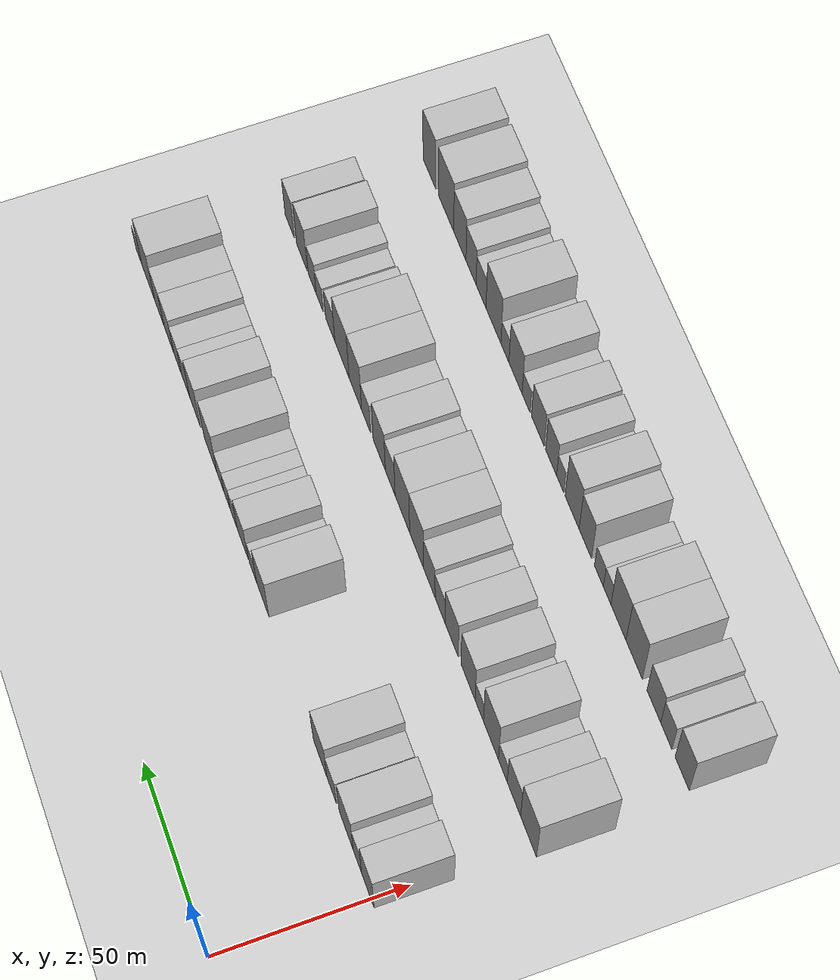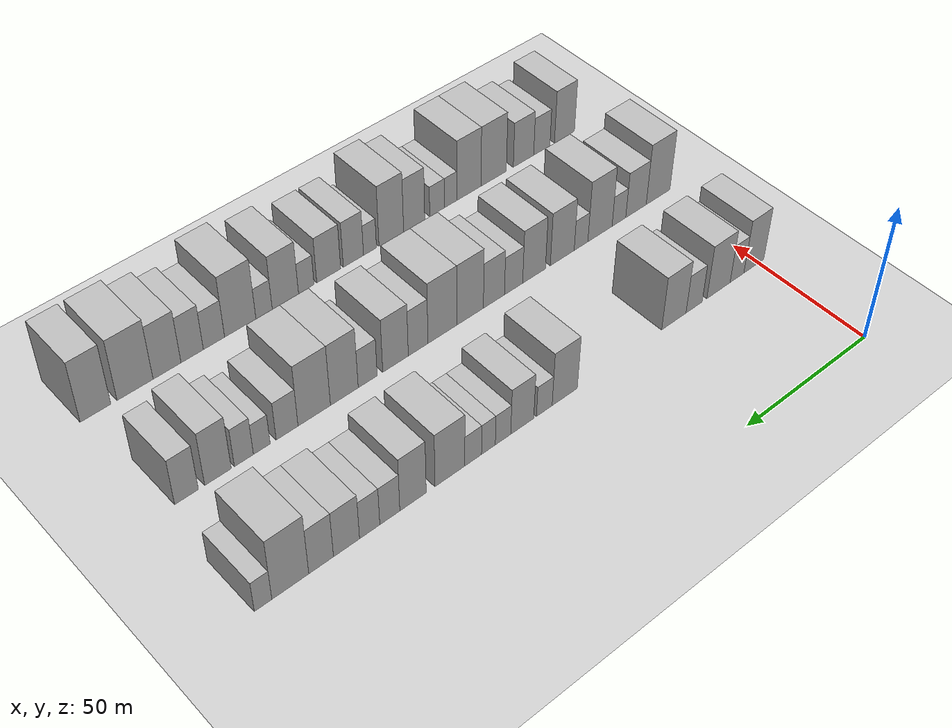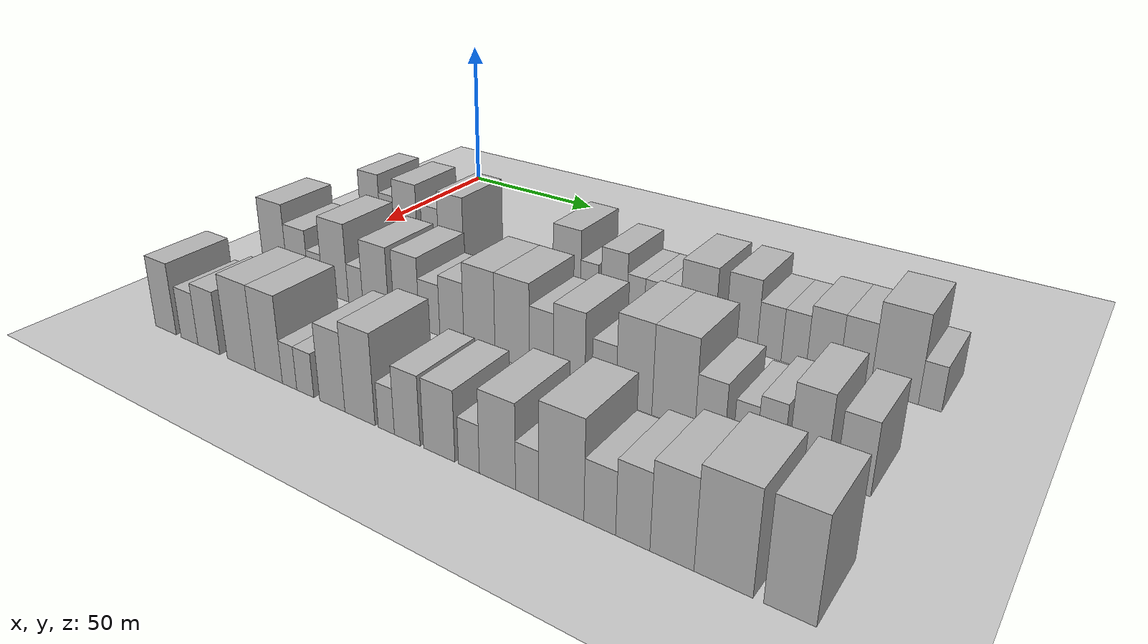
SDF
<sdf version="1.6">
 <world name="default">
  <include>
   <name>ground_plane_2</name>
   <uri>model://HANNAS_ground_plane</uri>
   <pose>100 0 0  0 0 0</pose>
  </include>
  <model name="building_45">
   <static>1</static>
   <pose>50.0000 2.2030 0 0.000000 0.000000 0.000000</pose>
   <link name="link">
    <pose>0 0 10.50 0 0 0</pose>
    <collision name="collision"><geometry><box><size>20.0000 8.8284 21.0000</size></box></geometry></collision>
    <visual name="visual">
     <cast_shadows>0</cast_shadows>
     <geometry><box><size>20.0000 8.8284 21.0000</size></box></geometry>
     <material>
      <script>
       <uri>model://HANNAS_wall/materials/scripts</uri>
       <uri>model://HANNAS_wall/materials/textures</uri>
       <name>vrc/HANNAS_wall</name>
      </script>
     </material>
    </visual>
   </link>
  </model>
  <model name="building_46">
   <static>1</static>
   <pose>50.0000 9.6399 0 0.000000 0.000000 0.000000</pose>
   <link name="link">
    <pose>0 0 7.50 0 0 0</pose>
    <collision name="collision"><geometry><box><size>20.0000 6.0454 15.0000</size></box></geometry></collision>
    <visual name="visual">
     <cast_shadows>0</cast_shadows>
     <geometry><box><size>20.0000 6.0454 15.0000</size></box></geometry>
     <material>
      <script>
       <uri>model://HANNAS_wall/materials/scripts</uri>
       <uri>model://HANNAS_wall/materials/textures</uri>
       <name>vrc/HANNAS_wall</name>
      </script>
     </material>
    </visual>
   </link>
  </model>
  <model name="building_47">
   <static>1</static>
   <pose>50.0000 17.6704 0 0.000000 0.000000 0.000000</pose>
   <link name="link">
    <pose>0 0 10.50 0 0 0</pose>
    <collision name="collision"><geometry><box><size>20.0000 10.0155 21.0000</size></box></geometry></collision>
    <visual name="visual">
     <cast_shadows>0</cast_shadows>
     <geometry><box><size>20.0000 10.0155 21.0000</size></box></geometry>
     <material>
      <script>
       <uri>model://HANNAS_wall/materials/scripts</uri>
       <uri>model://HANNAS_wall/materials/textures</uri>
       <name>vrc/HANNAS_wall</name>
      </script>
     </material>
    </visual>
   </link>
  </model>
  <model name="building_48">
   <static>1</static>
   <pose>50.0000 28.0941 0 0.000000 0.000000 0.000000</pose>
   <link name="link">
    <pose>0 0 7.50 0 0 0</pose>
    <collision name="collision"><geometry><box><size>20.0000 6.8319 15.0000</size></box></geometry></collision>
    <visual name="visual">
     <cast_shadows>0</cast_shadows>
     <geometry><box><size>20.0000 6.8319 15.0000</size></box></geometry>
     <material>
      <script>
       <uri>model://HANNAS_wall/materials/scripts</uri>
       <uri>model://HANNAS_wall/materials/textures</uri>
       <name>vrc/HANNAS_wall</name>
      </script>
     </material>
    </visual>
   </link>
  </model>
  <model name="building_49">
   <static>1</static>
   <pose>50.0000 36.5680 0 0.000000 0.000000 0.000000</pose>
   <link name="link">
    <pose>0 0 10.50 0 0 0</pose>
    <collision name="collision"><geometry><box><size>20.0000 10.1159 21.0000</size></box></geometry></collision>
    <visual name="visual">
     <cast_shadows>0</cast_shadows>
     <geometry><box><size>20.0000 10.1159 21.0000</size></box></geometry>
     <material>
      <script>
       <uri>model://HANNAS_wall/materials/scripts</uri>
       <uri>model://HANNAS_wall/materials/textures</uri>
       <name>vrc/HANNAS_wall</name>
      </script>
     </material>
    </visual>
   </link>
  </model>
  <model name="building_50">
   <static>1</static>
   <pose>50.0000 80.0005 0 0.000000 0.000000 0.000000</pose>
   <link name="link">
    <pose>0 0 10.50 0 0 0</pose>
    <collision name="collision"><geometry><box><size>20.0000 9.5830 21.0000</size></box></geometry></collision>
    <visual name="visual">
     <cast_shadows>0</cast_shadows>
     <geometry><box><size>20.0000 9.5830 21.0000</size></box></geometry>
     <material>
      <script>
       <uri>model://HANNAS_wall/materials/scripts</uri>
       <uri>model://HANNAS_wall/materials/textures</uri>
       <name>vrc/HANNAS_wall</name>
      </script>
     </material>
    </visual>
   </link>
  </model>
  <model name="building_51">
   <static>1</static>
   <pose>50.0000 87.7280 0 0.000000 0.000000 0.000000</pose>
   <link name="link">
    <pose>0 0 6.00 0 0 0</pose>
    <collision name="collision"><geometry><box><size>20.0000 5.8721 12.0000</size></box></geometry></collision>
    <visual name="visual">
     <cast_shadows>0</cast_shadows>
     <geometry><box><size>20.0000 5.8721 12.0000</size></box></geometry>
     <material>
      <script>
       <uri>model://HANNAS_wall/materials/scripts</uri>
       <uri>model://HANNAS_wall/materials/textures</uri>
       <name>vrc/HANNAS_wall</name>
      </script>
     </material>
    </visual>
   </link>
  </model>
  <model name="building_52">
   <static>1</static>
   <pose>50.0000 95.9027 0 0.000000 0.000000 0.000000</pose>
   <link name="link">
    <pose>0 0 9.00 0 0 0</pose>
    <collision name="collision"><geometry><box><size>20.0000 8.4772 18.0000</size></box></geometry></collision>
    <visual name="visual">
     <cast_shadows>0</cast_shadows>
     <geometry><box><size>20.0000 8.4772 18.0000</size></box></geometry>
     <material>
      <script>
       <uri>model://HANNAS_wall/materials/scripts</uri>
       <uri>model://HANNAS_wall/materials/textures</uri>
       <name>vrc/HANNAS_wall</name>
      </script>
     </material>
    </visual>
   </link>
  </model>
  <model name="building_53">
   <static>1</static>
   <pose>50.0000 102.9411 0 0.000000 0.000000 0.000000</pose>
   <link name="link">
    <pose>0 0 6.00 0 0 0</pose>
    <collision name="collision"><geometry><box><size>20.0000 5.5996 12.0000</size></box></geometry></collision>
    <visual name="visual">
     <cast_shadows>0</cast_shadows>
     <geometry><box><size>20.0000 5.5996 12.0000</size></box></geometry>
     <material>
      <script>
       <uri>model://HANNAS_wall/materials/scripts</uri>
       <uri>model://HANNAS_wall/materials/textures</uri>
       <name>vrc/HANNAS_wall</name>
      </script>
     </material>
    </visual>
   </link>
  </model>
  <model name="building_54">
   <static>1</static>
   <pose>50.0000 108.2143 0 0.000000 0.000000 0.000000</pose>
   <link name="link">
    <pose>0 0 6.00 0 0 0</pose>
    <collision name="collision"><geometry><box><size>20.0000 4.9468 12.0000</size></box></geometry></collision>
    <visual name="visual">
     <cast_shadows>0</cast_shadows>
     <geometry><box><size>20.0000 4.9468 12.0000</size></box></geometry>
     <material>
      <script>
       <uri>model://HANNAS_wall/materials/scripts</uri>
       <uri>model://HANNAS_wall/materials/textures</uri>
       <name>vrc/HANNAS_wall</name>
      </script>
     </material>
    </visual>
   </link>
  </model>
  <model name="building_55">
   <static>1</static>
   <pose>50.0000 113.6598 0 0.000000 0.000000 0.000000</pose>
   <link name="link">
    <pose>0 0 6.00 0 0 0</pose>
    <collision name="collision"><geometry><box><size>20.0000 5.9442 12.0000</size></box></geometry></collision>
    <visual name="visual">
     <cast_shadows>0</cast_shadows>
     <geometry><box><size>20.0000 5.9442 12.0000</size></box></geometry>
     <material>
      <script>
       <uri>model://HANNAS_wall/materials/scripts</uri>
       <uri>model://HANNAS_wall/materials/textures</uri>
       <name>vrc/HANNAS_wall</name>
      </script>
     </material>
    </visual>
   </link>
  </model>
  <model name="building_56">
   <static>1</static>
   <pose>50.0000 121.8234 0 0.000000 0.000000 0.000000</pose>
   <link name="link">
    <pose>0 0 10.50 0 0 0</pose>
    <collision name="collision"><geometry><box><size>20.0000 10.3828 21.0000</size></box></geometry></collision>
    <visual name="visual">
     <cast_shadows>0</cast_shadows>
     <geometry><box><size>20.0000 10.3828 21.0000</size></box></geometry>
     <material>
      <script>
       <uri>model://HANNAS_wall/materials/scripts</uri>
       <uri>model://HANNAS_wall/materials/textures</uri>
       <name>vrc/HANNAS_wall</name>
      </script>
     </material>
    </visual>
   </link>
  </model>
  <model name="building_57">
   <static>1</static>
   <pose>50.0000 134.4883 0 0.000000 0.000000 0.000000</pose>
   <link name="link">
    <pose>0 0 10.50 0 0 0</pose>
    <collision name="collision"><geometry><box><size>20.0000 8.9471 21.0000</size></box></geometry></collision>
    <visual name="visual">
     <cast_shadows>0</cast_shadows>
     <geometry><box><size>20.0000 8.9471 21.0000</size></box></geometry>
     <material>
      <script>
       <uri>model://HANNAS_wall/materials/scripts</uri>
       <uri>model://HANNAS_wall/materials/textures</uri>
       <name>vrc/HANNAS_wall</name>
      </script>
     </material>
    </visual>
   </link>
  </model>
  <model name="building_58">
   <static>1</static>
   <pose>50.0000 142.2953 0 0.000000 0.000000 0.000000</pose>
   <link name="link">
    <pose>0 0 7.50 0 0 0</pose>
    <collision name="collision"><geometry><box><size>20.0000 6.6669 15.0000</size></box></geometry></collision>
    <visual name="visual">
     <cast_shadows>0</cast_shadows>
     <geometry><box><size>20.0000 6.6669 15.0000</size></box></geometry>
     <material>
      <script>
       <uri>model://HANNAS_wall/materials/scripts</uri>
       <uri>model://HANNAS_wall/materials/textures</uri>
       <name>vrc/HANNAS_wall</name>
      </script>
     </material>
    </visual>
   </link>
  </model>
  <model name="building_59">
   <static>1</static>
   <pose>50.0000 148.9482 0 0.000000 0.000000 0.000000</pose>
   <link name="link">
    <pose>0 0 7.50 0 0 0</pose>
    <collision name="collision"><geometry><box><size>20.0000 6.6388 15.0000</size></box></geometry></collision>
    <visual name="visual">
     <cast_shadows>0</cast_shadows>
     <geometry><box><size>20.0000 6.6388 15.0000</size></box></geometry>
     <material>
      <script>
       <uri>model://HANNAS_wall/materials/scripts</uri>
       <uri>model://HANNAS_wall/materials/textures</uri>
       <name>vrc/HANNAS_wall</name>
      </script>
     </material>
    </visual>
   </link>
  </model>
  <model name="building_60">
   <static>1</static>
   <pose>50.0000 156.4755 0 0.000000 0.000000 0.000000</pose>
   <link name="link">
    <pose>0 0 9.00 0 0 0</pose>
    <collision name="collision"><geometry><box><size>20.0000 8.4159 18.0000</size></box></geometry></collision>
    <visual name="visual">
     <cast_shadows>0</cast_shadows>
     <geometry><box><size>20.0000 8.4159 18.0000</size></box></geometry>
     <material>
      <script>
       <uri>model://HANNAS_wall/materials/scripts</uri>
       <uri>model://HANNAS_wall/materials/textures</uri>
       <name>vrc/HANNAS_wall</name>
      </script>
     </material>
    </visual>
   </link>
  </model>
  <model name="building_61">
   <static>1</static>
   <pose>50.0000 164.6025 0 0.000000 0.000000 0.000000</pose>
   <link name="link">
    <pose>0 0 9.00 0 0 0</pose>
    <collision name="collision"><geometry><box><size>20.0000 7.8381 18.0000</size></box></geometry></collision>
    <visual name="visual">
     <cast_shadows>0</cast_shadows>
     <geometry><box><size>20.0000 7.8381 18.0000</size></box></geometry>
     <material>
      <script>
       <uri>model://HANNAS_wall/materials/scripts</uri>
       <uri>model://HANNAS_wall/materials/textures</uri>
       <name>vrc/HANNAS_wall</name>
      </script>
     </material>
    </visual>
   </link>
  </model>
  <model name="building_62">
   <static>1</static>
   <pose>50.0000 174.2409 0 0.000000 0.000000 0.000000</pose>
   <link name="link">
    <pose>0 0 12.00 0 0 0</pose>
    <collision name="collision"><geometry><box><size>20.0000 11.4389 24.0000</size></box></geometry></collision>
    <visual name="visual">
     <cast_shadows>0</cast_shadows>
     <geometry><box><size>20.0000 11.4389 24.0000</size></box></geometry>
     <material>
      <script>
       <uri>model://HANNAS_wall/materials/scripts</uri>
       <uri>model://HANNAS_wall/materials/textures</uri>
       <name>vrc/HANNAS_wall</name>
      </script>
     </material>
    </visual>
   </link>
  </model>
  <model name="building_63">
   <static>1</static>
   <pose>50.0000 182.6428 0 0.000000 0.000000 0.000000</pose>
   <link name="link">
    <pose>0 0 6.00 0 0 0</pose>
    <collision name="collision"><geometry><box><size>20.0000 5.3650 12.0000</size></box></geometry></collision>
    <visual name="visual">
     <cast_shadows>0</cast_shadows>
     <geometry><box><size>20.0000 5.3650 12.0000</size></box></geometry>
     <material>
      <script>
       <uri>model://HANNAS_wall/materials/scripts</uri>
       <uri>model://HANNAS_wall/materials/textures</uri>
       <name>vrc/HANNAS_wall</name>
      </script>
     </material>
    </visual>
   </link>
  </model>
  <model name="building_120">
   <static>1</static>
   <pose>90.0000 1.5467 0 0.000000 0.000000 0.000000</pose>
   <link name="link">
    <pose>0 0 12.00 0 0 0</pose>
    <collision name="collision"><geometry><box><size>20.0000 10.5929 24.0000</size></box></geometry></collision>
    <visual name="visual">
     <cast_shadows>0</cast_shadows>
     <geometry><box><size>20.0000 10.5929 24.0000</size></box></geometry>
     <material>
      <script>
       <uri>model://HANNAS_wall/materials/scripts</uri>
       <uri>model://HANNAS_wall/materials/textures</uri>
       <name>vrc/HANNAS_wall</name>
      </script>
     </material>
    </visual>
   </link>
  </model>
  <model name="building_121">
   <static>1</static>
   <pose>90.0000 11.3215 0 0.000000 0.000000 0.000000</pose>
   <link name="link">
    <pose>0 0 9.00 0 0 0</pose>
    <collision name="collision"><geometry><box><size>20.0000 8.9568 18.0000</size></box></geometry></collision>
    <visual name="visual">
     <cast_shadows>0</cast_shadows>
     <geometry><box><size>20.0000 8.9568 18.0000</size></box></geometry>
     <material>
      <script>
       <uri>model://HANNAS_wall/materials/scripts</uri>
       <uri>model://HANNAS_wall/materials/textures</uri>
       <name>vrc/HANNAS_wall</name>
      </script>
     </material>
    </visual>
   </link>
  </model>
  <model name="building_122">
   <static>1</static>
   <pose>90.0000 18.7547 0 0.000000 0.000000 0.000000</pose>
   <link name="link">
    <pose>0 0 6.00 0 0 0</pose>
    <collision name="collision"><geometry><box><size>20.0000 5.9097 12.0000</size></box></geometry></collision>
    <visual name="visual">
     <cast_shadows>0</cast_shadows>
     <geometry><box><size>20.0000 5.9097 12.0000</size></box></geometry>
     <material>
      <script>
       <uri>model://HANNAS_wall/materials/scripts</uri>
       <uri>model://HANNAS_wall/materials/textures</uri>
       <name>vrc/HANNAS_wall</name>
      </script>
     </material>
    </visual>
   </link>
  </model>
  <model name="building_123">
   <static>1</static>
   <pose>90.0000 26.8684 0 0.000000 0.000000 0.000000</pose>
   <link name="link">
    <pose>0 0 12.00 0 0 0</pose>
    <collision name="collision"><geometry><box><size>20.0000 10.3178 24.0000</size></box></geometry></collision>
    <visual name="visual">
     <cast_shadows>0</cast_shadows>
     <geometry><box><size>20.0000 10.3178 24.0000</size></box></geometry>
     <material>
      <script>
       <uri>model://HANNAS_wall/materials/scripts</uri>
       <uri>model://HANNAS_wall/materials/textures</uri>
       <name>vrc/HANNAS_wall</name>
      </script>
     </material>
    </visual>
   </link>
  </model>
  <model name="building_124">
   <static>1</static>
   <pose>90.0000 34.8892 0 0.000000 0.000000 0.000000</pose>
   <link name="link">
    <pose>0 0 6.00 0 0 0</pose>
    <collision name="collision"><geometry><box><size>20.0000 5.7238 12.0000</size></box></geometry></collision>
    <visual name="visual">
     <cast_shadows>0</cast_shadows>
     <geometry><box><size>20.0000 5.7238 12.0000</size></box></geometry>
     <material>
      <script>
       <uri>model://HANNAS_wall/materials/scripts</uri>
       <uri>model://HANNAS_wall/materials/textures</uri>
       <name>vrc/HANNAS_wall</name>
      </script>
     </material>
    </visual>
   </link>
  </model>
  <model name="building_125">
   <static>1</static>
   <pose>90.0000 42.6871 0 0.000000 0.000000 0.000000</pose>
   <link name="link">
    <pose>0 0 10.50 0 0 0</pose>
    <collision name="collision"><geometry><box><size>20.0000 9.8719 21.0000</size></box></geometry></collision>
    <visual name="visual">
     <cast_shadows>0</cast_shadows>
     <geometry><box><size>20.0000 9.8719 21.0000</size></box></geometry>
     <material>
      <script>
       <uri>model://HANNAS_wall/materials/scripts</uri>
       <uri>model://HANNAS_wall/materials/textures</uri>
       <name>vrc/HANNAS_wall</name>
      </script>
     </material>
    </visual>
   </link>
  </model>
  <model name="building_126">
   <static>1</static>
   <pose>90.0000 54.2210 0 0.000000 0.000000 0.000000</pose>
   <link name="link">
    <pose>0 0 10.50 0 0 0</pose>
    <collision name="collision"><geometry><box><size>20.0000 9.1960 21.0000</size></box></geometry></collision>
    <visual name="visual">
     <cast_shadows>0</cast_shadows>
     <geometry><box><size>20.0000 9.1960 21.0000</size></box></geometry>
     <material>
      <script>
       <uri>model://HANNAS_wall/materials/scripts</uri>
       <uri>model://HANNAS_wall/materials/textures</uri>
       <name>vrc/HANNAS_wall</name>
      </script>
     </material>
    </visual>
   </link>
  </model>
  <model name="building_127">
   <static>1</static>
   <pose>90.0000 62.4414 0 0.000000 0.000000 0.000000</pose>
   <link name="link">
    <pose>0 0 7.50 0 0 0</pose>
    <collision name="collision"><geometry><box><size>20.0000 7.2447 15.0000</size></box></geometry></collision>
    <visual name="visual">
     <cast_shadows>0</cast_shadows>
     <geometry><box><size>20.0000 7.2447 15.0000</size></box></geometry>
     <material>
      <script>
       <uri>model://HANNAS_wall/materials/scripts</uri>
       <uri>model://HANNAS_wall/materials/textures</uri>
       <name>vrc/HANNAS_wall</name>
      </script>
     </material>
    </visual>
   </link>
  </model>
  <model name="building_128">
   <static>1</static>
   <pose>90.0000 70.1866 0 0.000000 0.000000 0.000000</pose>
   <link name="link">
    <pose>0 0 9.00 0 0 0</pose>
    <collision name="collision"><geometry><box><size>20.0000 8.2458 18.0000</size></box></geometry></collision>
    <visual name="visual">
     <cast_shadows>0</cast_shadows>
     <geometry><box><size>20.0000 8.2458 18.0000</size></box></geometry>
     <material>
      <script>
       <uri>model://HANNAS_wall/materials/scripts</uri>
       <uri>model://HANNAS_wall/materials/textures</uri>
       <name>vrc/HANNAS_wall</name>
      </script>
     </material>
    </visual>
   </link>
  </model>
  <model name="building_129">
   <static>1</static>
   <pose>90.0000 79.4463 0 0.000000 0.000000 0.000000</pose>
   <link name="link">
    <pose>0 0 12.00 0 0 0</pose>
    <collision name="collision"><geometry><box><size>20.0000 10.2736 24.0000</size></box></geometry></collision>
    <visual name="visual">
     <cast_shadows>0</cast_shadows>
     <geometry><box><size>20.0000 10.2736 24.0000</size></box></geometry>
     <material>
      <script>
       <uri>model://HANNAS_wall/materials/scripts</uri>
       <uri>model://HANNAS_wall/materials/textures</uri>
       <name>vrc/HANNAS_wall</name>
      </script>
     </material>
    </visual>
   </link>
  </model>
  <model name="building_130">
   <static>1</static>
   <pose>90.0000 89.9879 0 0.000000 0.000000 0.000000</pose>
   <link name="link">
    <pose>0 0 12.00 0 0 0</pose>
    <collision name="collision"><geometry><box><size>20.0000 10.8097 24.0000</size></box></geometry></collision>
    <visual name="visual">
     <cast_shadows>0</cast_shadows>
     <geometry><box><size>20.0000 10.8097 24.0000</size></box></geometry>
     <material>
      <script>
       <uri>model://HANNAS_wall/materials/scripts</uri>
       <uri>model://HANNAS_wall/materials/textures</uri>
       <name>vrc/HANNAS_wall</name>
      </script>
     </material>
    </visual>
   </link>
  </model>
  <model name="building_131">
   <static>1</static>
   <pose>90.0000 99.0269 0 0.000000 0.000000 0.000000</pose>
   <link name="link">
    <pose>0 0 9.00 0 0 0</pose>
    <collision name="collision"><geometry><box><size>20.0000 7.2683 18.0000</size></box></geometry></collision>
    <visual name="visual">
     <cast_shadows>0</cast_shadows>
     <geometry><box><size>20.0000 7.2683 18.0000</size></box></geometry>
     <material>
      <script>
       <uri>model://HANNAS_wall/materials/scripts</uri>
       <uri>model://HANNAS_wall/materials/textures</uri>
       <name>vrc/HANNAS_wall</name>
      </script>
     </material>
    </visual>
   </link>
  </model>
  <model name="building_132">
   <static>1</static>
   <pose>90.0000 107.3070 0 0.000000 0.000000 0.000000</pose>
   <link name="link">
    <pose>0 0 10.50 0 0 0</pose>
    <collision name="collision"><geometry><box><size>20.0000 9.2919 21.0000</size></box></geometry></collision>
    <visual name="visual">
     <cast_shadows>0</cast_shadows>
     <geometry><box><size>20.0000 9.2919 21.0000</size></box></geometry>
     <material>
      <script>
       <uri>model://HANNAS_wall/materials/scripts</uri>
       <uri>model://HANNAS_wall/materials/textures</uri>
       <name>vrc/HANNAS_wall</name>
      </script>
     </material>
    </visual>
   </link>
  </model>
  <model name="building_133">
   <static>1</static>
   <pose>90.0000 117.3348 0 0.000000 0.000000 0.000000</pose>
   <link name="link">
    <pose>0 0 7.50 0 0 0</pose>
    <collision name="collision"><geometry><box><size>20.0000 6.7636 15.0000</size></box></geometry></collision>
    <visual name="visual">
     <cast_shadows>0</cast_shadows>
     <geometry><box><size>20.0000 6.7636 15.0000</size></box></geometry>
     <material>
      <script>
       <uri>model://HANNAS_wall/materials/scripts</uri>
       <uri>model://HANNAS_wall/materials/textures</uri>
       <name>vrc/HANNAS_wall</name>
      </script>
     </material>
    </visual>
   </link>
  </model>
  <model name="building_134">
   <static>1</static>
   <pose>90.0000 125.5777 0 0.000000 0.000000 0.000000</pose>
   <link name="link">
    <pose>0 0 12.00 0 0 0</pose>
    <collision name="collision"><geometry><box><size>20.0000 9.7221 24.0000</size></box></geometry></collision>
    <visual name="visual">
     <cast_shadows>0</cast_shadows>
     <geometry><box><size>20.0000 9.7221 24.0000</size></box></geometry>
     <material>
      <script>
       <uri>model://HANNAS_wall/materials/scripts</uri>
       <uri>model://HANNAS_wall/materials/textures</uri>
       <name>vrc/HANNAS_wall</name>
      </script>
     </material>
    </visual>
   </link>
  </model>
  <model name="building_135">
   <static>1</static>
   <pose>90.0000 135.9975 0 0.000000 0.000000 0.000000</pose>
   <link name="link">
    <pose>0 0 12.00 0 0 0</pose>
    <collision name="collision"><geometry><box><size>20.0000 11.1176 24.0000</size></box></geometry></collision>
    <visual name="visual">
     <cast_shadows>0</cast_shadows>
     <geometry><box><size>20.0000 11.1176 24.0000</size></box></geometry>
     <material>
      <script>
       <uri>model://HANNAS_wall/materials/scripts</uri>
       <uri>model://HANNAS_wall/materials/textures</uri>
       <name>vrc/HANNAS_wall</name>
      </script>
     </material>
    </visual>
   </link>
  </model>
  <model name="building_136">
   <static>1</static>
   <pose>90.0000 145.2322 0 0.000000 0.000000 0.000000</pose>
   <link name="link">
    <pose>0 0 7.50 0 0 0</pose>
    <collision name="collision"><geometry><box><size>20.0000 7.3517 15.0000</size></box></geometry></collision>
    <visual name="visual">
     <cast_shadows>0</cast_shadows>
     <geometry><box><size>20.0000 7.3517 15.0000</size></box></geometry>
     <material>
      <script>
       <uri>model://HANNAS_wall/materials/scripts</uri>
       <uri>model://HANNAS_wall/materials/textures</uri>
       <name>vrc/HANNAS_wall</name>
      </script>
     </material>
    </visual>
   </link>
  </model>
  <model name="building_137">
   <static>1</static>
   <pose>90.0000 153.6802 0 0.000000 0.000000 0.000000</pose>
   <link name="link">
    <pose>0 0 6.00 0 0 0</pose>
    <collision name="collision"><geometry><box><size>20.0000 5.5443 12.0000</size></box></geometry></collision>
    <visual name="visual">
     <cast_shadows>0</cast_shadows>
     <geometry><box><size>20.0000 5.5443 12.0000</size></box></geometry>
     <material>
      <script>
       <uri>model://HANNAS_wall/materials/scripts</uri>
       <uri>model://HANNAS_wall/materials/textures</uri>
       <name>vrc/HANNAS_wall</name>
      </script>
     </material>
    </visual>
   </link>
  </model>
  <model name="building_138">
   <static>1</static>
   <pose>90.0000 159.5512 0 0.000000 0.000000 0.000000</pose>
   <link name="link">
    <pose>0 0 7.50 0 0 0</pose>
    <collision name="collision"><geometry><box><size>20.0000 6.1977 15.0000</size></box></geometry></collision>
    <visual name="visual">
     <cast_shadows>0</cast_shadows>
     <geometry><box><size>20.0000 6.1977 15.0000</size></box></geometry>
     <material>
      <script>
       <uri>model://HANNAS_wall/materials/scripts</uri>
       <uri>model://HANNAS_wall/materials/textures</uri>
       <name>vrc/HANNAS_wall</name>
      </script>
     </material>
    </visual>
   </link>
  </model>
  <model name="building_139">
   <static>1</static>
   <pose>90.0000 167.9157 0 0.000000 0.000000 0.000000</pose>
   <link name="link">
    <pose>0 0 10.50 0 0 0</pose>
    <collision name="collision"><geometry><box><size>20.0000 8.5313 21.0000</size></box></geometry></collision>
    <visual name="visual">
     <cast_shadows>0</cast_shadows>
     <geometry><box><size>20.0000 8.5313 21.0000</size></box></geometry>
     <material>
      <script>
       <uri>model://HANNAS_wall/materials/scripts</uri>
       <uri>model://HANNAS_wall/materials/textures</uri>
       <name>vrc/HANNAS_wall</name>
      </script>
     </material>
    </visual>
   </link>
  </model>
  <model name="building_140">
   <static>1</static>
   <pose>90.0000 177.9121 0 0.000000 0.000000 0.000000</pose>
   <link name="link">
    <pose>0 0 9.00 0 0 0</pose>
    <collision name="collision"><geometry><box><size>20.0000 7.4614 18.0000</size></box></geometry></collision>
    <visual name="visual">
     <cast_shadows>0</cast_shadows>
     <geometry><box><size>20.0000 7.4614 18.0000</size></box></geometry>
     <material>
      <script>
       <uri>model://HANNAS_wall/materials/scripts</uri>
       <uri>model://HANNAS_wall/materials/textures</uri>
       <name>vrc/HANNAS_wall</name>
      </script>
     </material>
    </visual>
   </link>
  </model>
  <model name="building_205">
   <static>1</static>
   <pose>130.0000 3.4668 0 0.000000 0.000000 0.000000</pose>
   <link name="link">
    <pose>0 0 10.50 0 0 0</pose>
    <collision name="collision"><geometry><box><size>20.0000 8.9452 21.0000</size></box></geometry></collision>
    <visual name="visual">
     <cast_shadows>0</cast_shadows>
     <geometry><box><size>20.0000 8.9452 21.0000</size></box></geometry>
     <material>
      <script>
       <uri>model://HANNAS_wall/materials/scripts</uri>
       <uri>model://HANNAS_wall/materials/textures</uri>
       <name>vrc/HANNAS_wall</name>
      </script>
     </material>
    </visual>
   </link>
  </model>
  <model name="building_206">
   <static>1</static>
   <pose>130.0000 13.5081 0 0.000000 0.000000 0.000000</pose>
   <link name="link">
    <pose>0 0 7.50 0 0 0</pose>
    <collision name="collision"><geometry><box><size>20.0000 7.1374 15.0000</size></box></geometry></collision>
    <visual name="visual">
     <cast_shadows>0</cast_shadows>
     <geometry><box><size>20.0000 7.1374 15.0000</size></box></geometry>
     <material>
      <script>
       <uri>model://HANNAS_wall/materials/scripts</uri>
       <uri>model://HANNAS_wall/materials/textures</uri>
       <name>vrc/HANNAS_wall</name>
      </script>
     </material>
    </visual>
   </link>
  </model>
  <model name="building_207">
   <static>1</static>
   <pose>130.0000 21.4849 0 0.000000 0.000000 0.000000</pose>
   <link name="link">
    <pose>0 0 9.00 0 0 0</pose>
    <collision name="collision"><geometry><box><size>20.0000 8.8162 18.0000</size></box></geometry></collision>
    <visual name="visual">
     <cast_shadows>0</cast_shadows>
     <geometry><box><size>20.0000 8.8162 18.0000</size></box></geometry>
     <material>
      <script>
       <uri>model://HANNAS_wall/materials/scripts</uri>
       <uri>model://HANNAS_wall/materials/textures</uri>
       <name>vrc/HANNAS_wall</name>
      </script>
     </material>
    </visual>
   </link>
  </model>
  <model name="building_208">
   <static>1</static>
   <pose>130.0000 34.2701 0 0.000000 0.000000 0.000000</pose>
   <link name="link">
    <pose>0 0 12.00 0 0 0</pose>
    <collision name="collision"><geometry><box><size>20.0000 10.7542 24.0000</size></box></geometry></collision>
    <visual name="visual">
     <cast_shadows>0</cast_shadows>
     <geometry><box><size>20.0000 10.7542 24.0000</size></box></geometry>
     <material>
      <script>
       <uri>model://HANNAS_wall/materials/scripts</uri>
       <uri>model://HANNAS_wall/materials/textures</uri>
       <name>vrc/HANNAS_wall</name>
      </script>
     </material>
    </visual>
   </link>
  </model>
  <model name="building_209">
   <static>1</static>
   <pose>130.0000 44.6390 0 0.000000 0.000000 0.000000</pose>
   <link name="link">
    <pose>0 0 12.00 0 0 0</pose>
    <collision name="collision"><geometry><box><size>20.0000 9.9835 24.0000</size></box></geometry></collision>
    <visual name="visual">
     <cast_shadows>0</cast_shadows>
     <geometry><box><size>20.0000 9.9835 24.0000</size></box></geometry>
     <material>
      <script>
       <uri>model://HANNAS_wall/materials/scripts</uri>
       <uri>model://HANNAS_wall/materials/textures</uri>
       <name>vrc/HANNAS_wall</name>
      </script>
     </material>
    </visual>
   </link>
  </model>
  <model name="building_210">
   <static>1</static>
   <pose>130.0000 52.1825 0 0.000000 0.000000 0.000000</pose>
   <link name="link">
    <pose>0 0 6.00 0 0 0</pose>
    <collision name="collision"><geometry><box><size>20.0000 5.1034 12.0000</size></box></geometry></collision>
    <visual name="visual">
     <cast_shadows>0</cast_shadows>
     <geometry><box><size>20.0000 5.1034 12.0000</size></box></geometry>
     <material>
      <script>
       <uri>model://HANNAS_wall/materials/scripts</uri>
       <uri>model://HANNAS_wall/materials/textures</uri>
       <name>vrc/HANNAS_wall</name>
      </script>
     </material>
    </visual>
   </link>
  </model>
  <model name="building_211">
   <static>1</static>
   <pose>130.0000 57.6973 0 0.000000 0.000000 0.000000</pose>
   <link name="link">
    <pose>0 0 6.00 0 0 0</pose>
    <collision name="collision"><geometry><box><size>20.0000 5.9263 12.0000</size></box></geometry></collision>
    <visual name="visual">
     <cast_shadows>0</cast_shadows>
     <geometry><box><size>20.0000 5.9263 12.0000</size></box></geometry>
     <material>
      <script>
       <uri>model://HANNAS_wall/materials/scripts</uri>
       <uri>model://HANNAS_wall/materials/textures</uri>
       <name>vrc/HANNAS_wall</name>
      </script>
     </material>
    </visual>
   </link>
  </model>
  <model name="building_212">
   <static>1</static>
   <pose>130.0000 66.8698 0 0.000000 0.000000 0.000000</pose>
   <link name="link">
    <pose>0 0 10.50 0 0 0</pose>
    <collision name="collision"><geometry><box><size>20.0000 8.4186 21.0000</size></box></geometry></collision>
    <visual name="visual">
     <cast_shadows>0</cast_shadows>
     <geometry><box><size>20.0000 8.4186 21.0000</size></box></geometry>
     <material>
      <script>
       <uri>model://HANNAS_wall/materials/scripts</uri>
       <uri>model://HANNAS_wall/materials/textures</uri>
       <name>vrc/HANNAS_wall</name>
      </script>
     </material>
    </visual>
   </link>
  </model>
  <model name="building_213">
   <static>1</static>
   <pose>130.0000 75.8978 0 0.000000 0.000000 0.000000</pose>
   <link name="link">
    <pose>0 0 12.00 0 0 0</pose>
    <collision name="collision"><geometry><box><size>20.0000 9.6375 24.0000</size></box></geometry></collision>
    <visual name="visual">
     <cast_shadows>0</cast_shadows>
     <geometry><box><size>20.0000 9.6375 24.0000</size></box></geometry>
     <material>
      <script>
       <uri>model://HANNAS_wall/materials/scripts</uri>
       <uri>model://HANNAS_wall/materials/textures</uri>
       <name>vrc/HANNAS_wall</name>
      </script>
     </material>
    </visual>
   </link>
  </model>
  <model name="building_214">
   <static>1</static>
   <pose>130.0000 84.2059 0 0.000000 0.000000 0.000000</pose>
   <link name="link">
    <pose>0 0 6.00 0 0 0</pose>
    <collision name="collision"><geometry><box><size>20.0000 4.9788 12.0000</size></box></geometry></collision>
    <visual name="visual">
     <cast_shadows>0</cast_shadows>
     <geometry><box><size>20.0000 4.9788 12.0000</size></box></geometry>
     <material>
      <script>
       <uri>model://HANNAS_wall/materials/scripts</uri>
       <uri>model://HANNAS_wall/materials/textures</uri>
       <name>vrc/HANNAS_wall</name>
      </script>
     </material>
    </visual>
   </link>
  </model>
  <model name="building_215">
   <static>1</static>
   <pose>130.0000 90.5419 0 0.000000 0.000000 0.000000</pose>
   <link name="link">
    <pose>0 0 9.00 0 0 0</pose>
    <collision name="collision"><geometry><box><size>20.0000 7.6932 18.0000</size></box></geometry></collision>
    <visual name="visual">
     <cast_shadows>0</cast_shadows>
     <geometry><box><size>20.0000 7.6932 18.0000</size></box></geometry>
     <material>
      <script>
       <uri>model://HANNAS_wall/materials/scripts</uri>
       <uri>model://HANNAS_wall/materials/textures</uri>
       <name>vrc/HANNAS_wall</name>
      </script>
     </material>
    </visual>
   </link>
  </model>
  <model name="building_216">
   <static>1</static>
   <pose>130.0000 99.8655 0 0.000000 0.000000 0.000000</pose>
   <link name="link">
    <pose>0 0 9.00 0 0 0</pose>
    <collision name="collision"><geometry><box><size>20.0000 8.9538 18.0000</size></box></geometry></collision>
    <visual name="visual">
     <cast_shadows>0</cast_shadows>
     <geometry><box><size>20.0000 8.9538 18.0000</size></box></geometry>
     <material>
      <script>
       <uri>model://HANNAS_wall/materials/scripts</uri>
       <uri>model://HANNAS_wall/materials/textures</uri>
       <name>vrc/HANNAS_wall</name>
      </script>
     </material>
    </visual>
   </link>
  </model>
  <model name="building_217">
   <static>1</static>
   <pose>130.0000 108.2043 0 0.000000 0.000000 0.000000</pose>
   <link name="link">
    <pose>0 0 6.00 0 0 0</pose>
    <collision name="collision"><geometry><box><size>20.0000 5.7238 12.0000</size></box></geometry></collision>
    <visual name="visual">
     <cast_shadows>0</cast_shadows>
     <geometry><box><size>20.0000 5.7238 12.0000</size></box></geometry>
     <material>
      <script>
       <uri>model://HANNAS_wall/materials/scripts</uri>
       <uri>model://HANNAS_wall/materials/textures</uri>
       <name>vrc/HANNAS_wall</name>
      </script>
     </material>
    </visual>
   </link>
  </model>
  <model name="building_218">
   <static>1</static>
   <pose>130.0000 115.8334 0 0.000000 0.000000 0.000000</pose>
   <link name="link">
    <pose>0 0 10.50 0 0 0</pose>
    <collision name="collision"><geometry><box><size>20.0000 9.5343 21.0000</size></box></geometry></collision>
    <visual name="visual">
     <cast_shadows>0</cast_shadows>
     <geometry><box><size>20.0000 9.5343 21.0000</size></box></geometry>
     <material>
      <script>
       <uri>model://HANNAS_wall/materials/scripts</uri>
       <uri>model://HANNAS_wall/materials/textures</uri>
       <name>vrc/HANNAS_wall</name>
      </script>
     </material>
    </visual>
   </link>
  </model>
  <model name="building_219">
   <static>1</static>
   <pose>130.0000 123.5187 0 0.000000 0.000000 0.000000</pose>
   <link name="link">
    <pose>0 0 6.00 0 0 0</pose>
    <collision name="collision"><geometry><box><size>20.0000 5.8363 12.0000</size></box></geometry></collision>
    <visual name="visual">
     <cast_shadows>0</cast_shadows>
     <geometry><box><size>20.0000 5.8363 12.0000</size></box></geometry>
     <material>
      <script>
       <uri>model://HANNAS_wall/materials/scripts</uri>
       <uri>model://HANNAS_wall/materials/textures</uri>
       <name>vrc/HANNAS_wall</name>
      </script>
     </material>
    </visual>
   </link>
  </model>
  <model name="building_220">
   <static>1</static>
   <pose>130.0000 131.9321 0 0.000000 0.000000 0.000000</pose>
   <link name="link">
    <pose>0 0 12.00 0 0 0</pose>
    <collision name="collision"><geometry><box><size>20.0000 10.9907 24.0000</size></box></geometry></collision>
    <visual name="visual">
     <cast_shadows>0</cast_shadows>
     <geometry><box><size>20.0000 10.9907 24.0000</size></box></geometry>
     <material>
      <script>
       <uri>model://HANNAS_wall/materials/scripts</uri>
       <uri>model://HANNAS_wall/materials/textures</uri>
       <name>vrc/HANNAS_wall</name>
      </script>
     </material>
    </visual>
   </link>
  </model>
  <model name="building_221">
   <static>1</static>
   <pose>130.0000 141.0926 0 0.000000 0.000000 0.000000</pose>
   <link name="link">
    <pose>0 0 7.50 0 0 0</pose>
    <collision name="collision"><geometry><box><size>20.0000 7.3302 15.0000</size></box></geometry></collision>
    <visual name="visual">
     <cast_shadows>0</cast_shadows>
     <geometry><box><size>20.0000 7.3302 15.0000</size></box></geometry>
     <material>
      <script>
       <uri>model://HANNAS_wall/materials/scripts</uri>
       <uri>model://HANNAS_wall/materials/textures</uri>
       <name>vrc/HANNAS_wall</name>
      </script>
     </material>
    </visual>
   </link>
  </model>
  <model name="building_222">
   <static>1</static>
   <pose>130.0000 148.5589 0 0.000000 0.000000 0.000000</pose>
   <link name="link">
    <pose>0 0 9.00 0 0 0</pose>
    <collision name="collision"><geometry><box><size>20.0000 7.6024 18.0000</size></box></geometry></collision>
    <visual name="visual">
     <cast_shadows>0</cast_shadows>
     <geometry><box><size>20.0000 7.6024 18.0000</size></box></geometry>
     <material>
      <script>
       <uri>model://HANNAS_wall/materials/scripts</uri>
       <uri>model://HANNAS_wall/materials/textures</uri>
       <name>vrc/HANNAS_wall</name>
      </script>
     </material>
    </visual>
   </link>
  </model>
  <model name="building_223">
   <static>1</static>
   <pose>130.0000 157.0283 0 0.000000 0.000000 0.000000</pose>
   <link name="link">
    <pose>0 0 10.50 0 0 0</pose>
    <collision name="collision"><geometry><box><size>20.0000 9.3364 21.0000</size></box></geometry></collision>
    <visual name="visual">
     <cast_shadows>0</cast_shadows>
     <geometry><box><size>20.0000 9.3364 21.0000</size></box></geometry>
     <material>
      <script>
       <uri>model://HANNAS_wall/materials/scripts</uri>
       <uri>model://HANNAS_wall/materials/textures</uri>
       <name>vrc/HANNAS_wall</name>
      </script>
     </material>
    </visual>
   </link>
  </model>
  <model name="building_224">
   <static>1</static>
   <pose>130.0000 167.5854 0 0.000000 0.000000 0.000000</pose>
   <link name="link">
    <pose>0 0 12.00 0 0 0</pose>
    <collision name="collision"><geometry><box><size>20.0000 11.7778 24.0000</size></box></geometry></collision>
    <visual name="visual">
     <cast_shadows>0</cast_shadows>
     <geometry><box><size>20.0000 11.7778 24.0000</size></box></geometry>
     <material>
      <script>
       <uri>model://HANNAS_wall/materials/scripts</uri>
       <uri>model://HANNAS_wall/materials/textures</uri>
       <name>vrc/HANNAS_wall</name>
      </script>
     </material>
    </visual>
   </link>
  </model>
  <model name="building_225">
   <static>1</static>
   <pose>130.0000 180.3797 0 0.000000 0.000000 0.000000</pose>
   <link name="link">
    <pose>0 0 12.00 0 0 0</pose>
    <collision name="collision"><geometry><box><size>20.0000 9.8107 24.0000</size></box></geometry></collision>
    <visual name="visual">
     <cast_shadows>0</cast_shadows>
     <geometry><box><size>20.0000 9.8107 24.0000</size></box></geometry>
     <material>
      <script>
       <uri>model://HANNAS_wall/materials/scripts</uri>
       <uri>model://HANNAS_wall/materials/textures</uri>
       <name>vrc/HANNAS_wall</name>
      </script>
     </material>
    </visual>
   </link>
  </model>
 </world>
</sdf>
